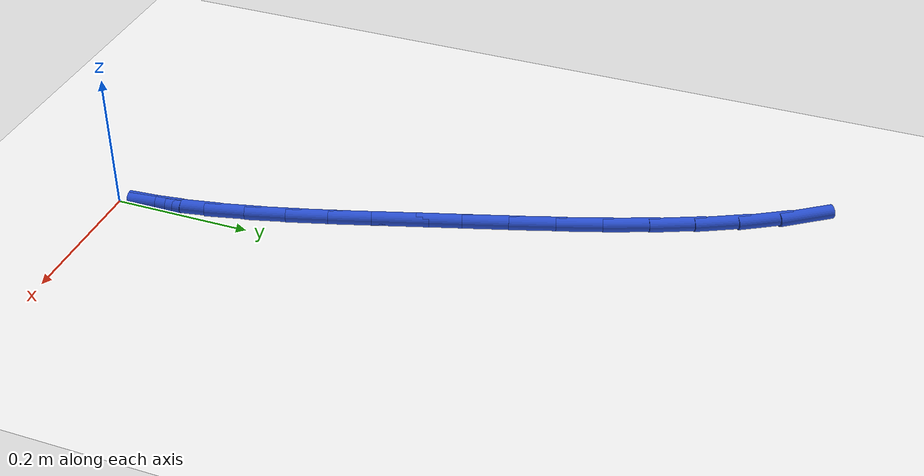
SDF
<sdf version="1.6">
 <world name="default">
  <model name="ground_plane">
   <static>1</static>
   <link name="link">
    <collision name="collision">
     <geometry><plane><normal>0 0 1</normal><size>100 100</size></plane></geometry>
     <surface><friction><ode><mu>100</mu><mu2>50</mu2></ode></friction></surface>
    </collision>
    <visual name="visual">
     <cast_shadows>0</cast_shadows>
     <geometry><plane><normal>0 0 1</normal><size>100 100</size></plane></geometry>
     <material>
      <script><uri>file://media/materials/scripts/gazebo.material</uri><name>Gazebo/WhiteGlow</name></script>
     </material>
    </visual>
   </link>
  </model>
  <model name="line">
   <link name="link_1">
    <pose>-0.004037575416281745 0.05731833337059254 0.01 0 1.57 -1.4348186650927535</pose>
    <collision name="collision">
     <geometry><cylinder><radius>0.01</radius><length>0.08</length></cylinder></geometry>
    </collision>
    <visual name="visual">
     <material>
      <script><name>Gazebo/Blue</name><uri>file://media/materials/scripts/gazebo.material</uri></script>
     </material>
     <geometry><cylinder><radius>0.01</radius><length>0.08</length></cylinder></geometry>
    </visual>
   </link>
   <link name="link_2">
    <pose>-0.01175211621200765 0.11370211652022898 0.01 0 1.57 -1.3787049932847433</pose>
    <collision name="collision">
     <geometry><cylinder><radius>0.01</radius><length>0.08</length></cylinder></geometry>
    </collision>
    <visual name="visual">
     <material>
      <script><name>Gazebo/Blue</name><uri>file://media/materials/scripts/gazebo.material</uri></script>
     </material>
     <geometry><cylinder><radius>0.01</radius><length>0.08</length></cylinder></geometry>
    </visual>
   </link>
   <link name="link_3">
    <pose>-0.022615047114090035 0.1695557052910629 0.01 0 1.57 -1.3334182568257678</pose>
    <collision name="collision">
     <geometry><cylinder><radius>0.01</radius><length>0.08</length></cylinder></geometry>
    </collision>
    <visual name="visual">
     <material>
      <script><name>Gazebo/Blue</name><uri>file://media/materials/scripts/gazebo.material</uri></script>
     </material>
     <geometry><cylinder><radius>0.01</radius><length>0.08</length></cylinder></geometry>
    </visual>
   </link>
   <link name="link_4">
    <pose>-0.03609779284944128 0.22528345552524812 0.01 0 1.57 -1.2995728628402556</pose>
    <collision name="collision">
     <geometry><cylinder><radius>0.01</radius><length>0.08</length></cylinder></geometry>
    </collision>
    <visual name="visual">
     <material>
      <script><name>Gazebo/Blue</name><uri>file://media/materials/scripts/gazebo.material</uri></script>
     </material>
     <geometry><cylinder><radius>0.01</radius><length>0.08</length></cylinder></geometry>
    </visual>
   </link>
   <link name="link_5">
    <pose>-0.05167177814497375 0.28128972306493855 0.01 0 1.57 -1.2772384988308771</pose>
    <collision name="collision">
     <geometry><cylinder><radius>0.01</radius><length>0.08</length></cylinder></geometry>
    </collision>
    <visual name="visual">
     <material>
      <script><name>Gazebo/Blue</name><uri>file://media/materials/scripts/gazebo.material</uri></script>
     </material>
     <geometry><cylinder><radius>0.01</radius><length>0.08</length></cylinder></geometry>
    </visual>
   </link>
   <link name="link_6">
    <pose>-0.06880842772759982 0.3379788637522878 0.01 0 1.57 -1.2660893254949797</pose>
    <collision name="collision">
     <geometry><cylinder><radius>0.01</radius><length>0.08</length></cylinder></geometry>
    </collision>
    <visual name="visual">
     <material>
      <script><name>Gazebo/Blue</name><uri>file://media/materials/scripts/gazebo.material</uri></script>
     </material>
     <geometry><cylinder><radius>0.01</radius><length>0.08</length></cylinder></geometry>
    </visual>
   </link>
   <link name="link_7">
    <pose>-0.08697916632423186 0.39575523342944985 0.01 0 1.57 -1.2653944081947126</pose>
    <collision name="collision">
     <geometry><cylinder><radius>0.01</radius><length>0.08</length></cylinder></geometry>
    </collision>
    <visual name="visual">
     <material>
      <script><name>Gazebo/Blue</name><uri>file://media/materials/scripts/gazebo.material</uri></script>
     </material>
     <geometry><cylinder><radius>0.01</radius><length>0.08</length></cylinder></geometry>
    </visual>
   </link>
   <link name="link_8">
    <pose>-0.10566166746171395 0.45501490058101823 0.01 0 1.57 -1.267503994169695</pose>
    <collision name="collision">
     <geometry><cylinder><radius>0.01</radius><length>0.08</length></cylinder></geometry>
    </collision>
    <visual name="visual">
     <material>
      <script><name>Gazebo/Blue</name><uri>file://media/materials/scripts/gazebo.material</uri></script>
     </material>
     <geometry><cylinder><radius>0.01</radius><length>0.08</length></cylinder></geometry>
    </visual>
   </link>
   <link name="link_9">
    <pose>-0.12465964398622445 0.5157215299584679 0.01 0 1.57 -1.2622437780268578</pose>
    <collision name="collision">
     <geometry><cylinder><radius>0.01</radius><length>0.08</length></cylinder></geometry>
    </collision>
    <visual name="visual">
     <material>
      <script><name>Gazebo/Blue</name><uri>file://media/materials/scripts/gazebo.material</uri></script>
     </material>
     <geometry><cylinder><radius>0.01</radius><length>0.08</length></cylinder></geometry>
    </visual>
   </link>
   <link name="link_10">
    <pose>-0.1442559000347422 0.5772034001792652 0.01 0 1.57 -1.2489859484521901</pose>
    <collision name="collision">
     <geometry><cylinder><radius>0.01</radius><length>0.08</length></cylinder></geometry>
    </collision>
    <visual name="visual">
     <material>
      <script><name>Gazebo/Blue</name><uri>file://media/materials/scripts/gazebo.material</uri></script>
     </material>
     <geometry><cylinder><radius>0.01</radius><length>0.08</length></cylinder></geometry>
    </visual>
   </link>
   <link name="link_11">
    <pose>-0.16477152747685883 0.6387380114500136 0.01 0 1.57 -1.2275007552103896</pose>
    <collision name="collision">
     <geometry><cylinder><radius>0.01</radius><length>0.08</length></cylinder></geometry>
    </collision>
    <visual name="visual">
     <material>
      <script><name>Gazebo/Blue</name><uri>file://media/materials/scripts/gazebo.material</uri></script>
     </material>
     <geometry><cylinder><radius>0.01</radius><length>0.08</length></cylinder></geometry>
    </visual>
   </link>
   <link name="link_12">
    <pose>-0.18652761818216598 0.6996028639773169 0.01 0 1.57 -1.1971415014831155</pose>
    <collision name="collision">
     <geometry><cylinder><radius>0.01</radius><length>0.08</length></cylinder></geometry>
    </collision>
    <visual name="visual">
     <material>
      <script><name>Gazebo/Blue</name><uri>file://media/materials/scripts/gazebo.material</uri></script>
     </material>
     <geometry><cylinder><radius>0.01</radius><length>0.08</length></cylinder></geometry>
    </visual>
   </link>
   <link name="link_13">
    <pose>-0.20984526402025536 0.7590754579677793 0.01 0 1.57 -1.156832286936047</pose>
    <collision name="collision">
     <geometry><cylinder><radius>0.01</radius><length>0.08</length></cylinder></geometry>
    </collision>
    <visual name="visual">
     <material>
      <script><name>Gazebo/Blue</name><uri>file://media/materials/scripts/gazebo.material</uri></script>
     </material>
     <geometry><cylinder><radius>0.01</radius><length>0.08</length></cylinder></geometry>
    </visual>
   </link>
   <link name="link_14">
    <pose>-0.2350455568607184 0.8164332936280038 0.01 0 1.57 -1.1050417511093311</pose>
    <collision name="collision">
     <geometry><cylinder><radius>0.01</radius><length>0.08</length></cylinder></geometry>
    </collision>
    <visual name="visual">
     <material>
      <script><name>Gazebo/Blue</name><uri>file://media/materials/scripts/gazebo.material</uri></script>
     </material>
     <geometry><cylinder><radius>0.01</radius><length>0.08</length></cylinder></geometry>
    </visual>
   </link>
   <link name="link_15">
    <pose>-0.2624495885731468 0.8709538711645946 0.01 0 1.57 -1.039773630951853</pose>
    <collision name="collision">
     <geometry><cylinder><radius>0.01</radius><length>0.08</length></cylinder></geometry>
    </collision>
    <visual name="visual">
     <material>
      <script><name>Gazebo/Blue</name><uri>file://media/materials/scripts/gazebo.material</uri></script>
     </material>
     <geometry><cylinder><radius>0.01</radius><length>0.08</length></cylinder></geometry>
    </visual>
   </link>
   <link name="link_16">
    <pose>-0.2923784510271322 0.9219146907841551 0.01 0 1.57 -0.9586370048366245</pose>
    <collision name="collision">
     <geometry><cylinder><radius>0.01</radius><length>0.08</length></cylinder></geometry>
    </collision>
    <visual name="visual">
     <material>
      <script><name>Gazebo/Blue</name><uri>file://media/materials/scripts/gazebo.material</uri></script>
     </material>
     <geometry><cylinder><radius>0.01</radius><length>0.08</length></cylinder></geometry>
    </visual>
   </link>
   <link name="link_141">
    <pose>-0.004144573757624143 0.057143235773505184 0.01 0 1.57 -1.4983935481771546</pose>
    <collision name="collision">
     <geometry><cylinder><radius>0.01</radius><length>0.08</length></cylinder></geometry>
    </collision>
    <visual name="visual">
     <material>
      <script><name>Gazebo/Blue</name><uri>file://media/materials/scripts/gazebo.material</uri></script>
     </material>
     <geometry><cylinder><radius>0.01</radius><length>0.08</length></cylinder></geometry>
    </visual>
   </link>
  </model>
 </world>
</sdf>
